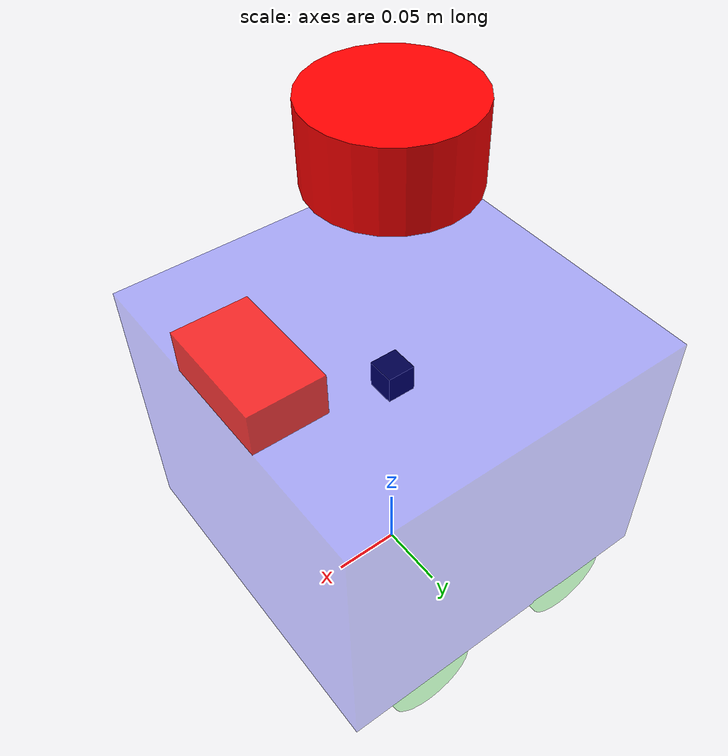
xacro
<?xml version="1.0"?>
<!-- 这个文文件的robot标签一定要有name属性，否则rviz和gazebo都不能加载机器人 -->
<robot name="first_robot" xmlns:xacro="http://www.ros.org/wiki/xacro" >
    <xacro:include filename="$(find robot_description)/urdf/common_macro.xacro" />
    <xacro:include filename="$(find robot_description)/urdf/base.xacro" />
    <xacro:include filename="$(find robot_description)/urdf/camera.xacro"/>
    <xacro:include filename="$(find robot_description)/urdf/lidar.xacro"/>
    <xacro:include filename="$(find robot_description)/urdf/gazebo_control.xacro"/>
    <xacro:include filename="$(find robot_description)/urdf/imu.xacro"/>
</robot>

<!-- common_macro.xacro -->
<robot xmlns:xacro="http://www.ros.org/wiki/xacro">
     <xacro:macro name="box_inertia" params="m x y z o_xyz o_rpy">
        <inertial>
            <mass value="${m}" />
            <origin xyz="${o_xyz}" rpy="${o_rpy}" />
            <inertia ixx="${(m/12) * (z*z + y*y)}" ixy="0" ixz="0"
                    iyy="${(m/12) * (x*x + z*z)}" iyz="0"
                    izz="${(m/12) * (x*x + y*y)}" />
        </inertial>
    </xacro:macro>

    <xacro:macro name="cylinder_inertia" params="m r l o_xyz o_rpy">
        <inertial>
            <mass value="${m}" />
            <origin xyz="${o_xyz}" rpy="${o_rpy}" />
            <inertia ixx="${(m/12) * (3*r*r + l*l)}" ixy="0" ixz="0"
                    iyy="${(m/12) * (3*r*r + l*l)}" iyz="0"
                    izz="${(m/2) * (r*r)}" />
        </inertial>
    </xacro:macro>

    <xacro:macro name="sphere_inertia" params="m r o_xyz o_rpy">
        <inertial>
            <mass value="${m}" />
            <origin xyz="${o_xyz}" rpy="${o_rpy}" />
            <inertia ixx="${(2/5) * m * r * r}" ixy="0" ixz="0"
                    iyy="${(2/5) * m * r * r}" iyz="0"
                    izz="${(2/5) * m * r * r}" />
        </inertial>
    </xacro:macro>
</robot>

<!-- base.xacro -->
<robot xmlns:xacro="http://www.ros.org/wiki/xacro" >

    <xacro:property name="base_length" value="0.25"/>
    <xacro:property name="base_width" value="0.25"/>
    <xacro:property name="base_height" value="0.20"/>
    <xacro:property name="wheel_radius" value="0.032"/>
    <xacro:property name="wheel_width" value="0.04"/>

    <!-- base-link -->
    <link name="base_footprint">
        <visual>
            <geometry>
               <sphere radius="0.0001"/>
            </geometry>
        </visual>
    </link>

    <link name="base_link">
        <visual>
            <geometry>
                <box size="${base_length} ${base_width} ${base_height}"/>
            </geometry>
            <material name="blue" >
                <color rgba="0.0 0.0 1.0 0.3"/>
            </material>
            <origin xyz="0.0 0.0 0.0" rpy="0.0 0.0 0.0"/>
        </visual>
        <collision>
                <geometry>
                    <box size="${base_length} ${base_width} ${base_height}"/>
                </geometry>
                <origin xyz="0.0 0.0 0.0" rpy="0.0 0.0 0.0"/>
        </collision>
        <xacro:box_inertia
            m="10.0"
            x="${base_length}" y="${base_width}" z="${base_height}"
            o_xyz="0.0 0.0 0.0"
            o_rpy="0.0 0.0 0.0"/>
    </link>

    <!-- wheels-macros -->
    <xacro:macro name="wheel_link" params="wheel_name">
        <link name="${wheel_name}">
            <visual>
                <geometry>
                    <cylinder radius="${wheel_radius}" length="${wheel_width}"/>
                </geometry>
                <material name="green" >
                    <color rgba="0.0 1.0 0.0 0.3"/>
                </material>
                <origin xyz="0.0 0.0 0.0" rpy="1.5708 0.0 0.0"/>
            </visual>
            <collision>
                <geometry>
                   <cylinder radius="${wheel_radius}" length="${wheel_width}"/>
                </geometry>
                <origin xyz="0.0 0.0 0.0" rpy="1.5708 0.0 0.0"/>

            </collision>
            <xacro:cylinder_inertia
                m="0.5"
                r="${wheel_radius}" l="${wheel_width}"
                o_xyz="0.0 0.0 0.0"
                o_rpy="1.5708 0.0 0.0"/>
        </link>
    </xacro:macro>

    <!-- wheel-links -->
    <xacro:wheel_link wheel_name="left_rear_wheel"/>
    <xacro:wheel_link wheel_name="right_rear_wheel"/>
    <xacro:wheel_link wheel_name="left_front_wheel"/>
    <xacro:wheel_link wheel_name="right_front_wheel"/>

    <!-- base_2_footprint_joint -->
    <joint name="base_footprint_joint" type="fixed">
        <parent link="base_footprint"/>
        <child link="base_link"/>
        <origin xyz="0.0 0.0 ${wheel_radius + (base_height)/2}" rpy="0.0 0.0 0.0"/>
    </joint>

    <!-- rear_left_wheel_joint -->
    <joint name="left_rear_wheel_joint" type="continuous">
        <parent link="base_link"/>
        <child link="left_rear_wheel"/>
        <origin xyz="${-(base_length/4)} ${(base_width - wheel_width)/2} -${base_height/2}" rpy="0.0 0.0 0.0"/>
        <axis xyz="0.0 1.0 0.0"/>
    </joint>

    <!-- rear_right_wheel_joint -->
    <joint name="right_rear_wheel_joint" type="continuous">
        <parent link="base_link"/>
        <child link="right_rear_wheel"/>
        <origin xyz="${-(base_length/4)} ${-(base_width - wheel_width)/2} -${base_height/2}" rpy="0.0 0.0 0.0"/>
        <axis xyz="0.0 1.0 0.0"/>
    </joint>

    <!-- front_left_wheel_joint -->
    <joint name="left_front_wheel_joint" type="continuous">
        <parent link="base_link"/>
        <child link="left_front_wheel"/>
        <origin xyz="${(base_length/4)} ${(base_width - wheel_width)/2} -${base_height/2}" rpy="0.0 0.0 0.0"/>
        <axis xyz="0.0 1.0 0.0"/>
    </joint>

    <!-- front_right_wheel_joint -->
    <joint name="right_front_wheel_joint" type="continuous">
        <parent link="base_link"/>
        <child link="right_front_wheel"/>
        <origin xyz="${(base_length/4)} ${-(base_width - wheel_width)/2} -${base_height/2}" rpy="0.0 0.0 0.0"/>
        <axis xyz="0.0 1.0 0.0"/>
    </joint>

</robot>

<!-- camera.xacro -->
<robot xmlns:xacro="http://www.ros.org/wiki/xacro" >

    <!-- camera_link -->
    <link name="camera_link">
        <visual>
            <geometry>
                <box size="0.05 0.08 0.03"/>
            </geometry>
            <material name="red">
                <color rgba="1.0 0.0 0.0 0.8"/>
            </material>
            <origin xyz="0.0 0.0 0.0" rpy="0.0 0.0 0.0"/>
        </visual>
        <collision>
            <geometry>
                <box size="0.05 0.08 0.03"/>
            </geometry>
            <origin xyz="0.0 0.0 0.0" rpy="0.0 0.0 0.0"/>
        </collision>
        <xacro:box_inertia
            m="1.0"
            x="0.05"
            y="0.08"
            z="0.03"
            o_xyz="0.0 0.0 0.0"
            o_rpy="0.0 0.0 0.0"/>
    </link>

    <!-- camera_base_joint -->
    <joint name="camera_base_joint" type="fixed">
        <parent link="base_link"/>
        <child link="camera_link"/>
        <origin xyz="${base_length/2 - 0.025} 0.0 ${(base_height +0.03)/2}" rpy="0.0 0.0 0.0"/>
    </joint>

</robot>

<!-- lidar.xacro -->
<robot xmlns:xacro="http://www.ros.org/wiki/xacro" >

    <xacro:property name="lidar_length" value="0.05"/>
    <xacro:property name="lidar_radius" value="0.05"/>
    <!-- Lidar_link -->
    <link name="lidar_link">
        <xacro:cylinder_inertia
            m="1.0"
            r="0.08"
            l="0.05"
            o_xyz="0.0 0.0 0.0"
            o_rpy="0.0 0.0 0.0"/>
        <visual >
            <origin xyz="0.0 0.0 0.0" rpy="0.0 0.0 0.0"/>
            <geometry>
                 <cylinder radius="${lidar_radius}" length="${lidar_length}"/>
            </geometry>
            <material name="red">
                <color rgba="1.0 0.0 0.0 1.0"/>
            </material>
        </visual>
        <collision>
            <origin xyz="0.0 0.0 0.0" rpy="0.0 0.0 0.0"/>
            <geometry>
                    <cylinder radius="${lidar_radius}" length="${lidar_length}"/>
            </geometry>
        </collision>
    </link>

    <!-- Lidar_base_joint -->
    <joint name="lidar_base_joint" type="fixed">
        <parent link="base_link"/>
        <child link="lidar_link"/>
        <origin xyz="0.0 0.0 ${(base_height/2 + lidar_length/2 + 0.1)}" rpy="0.0 0.0 0.0"/>
    </joint>

</robot>

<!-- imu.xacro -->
<robot xmlns:xacro="http://www.ros.org/wiki/xacro" >
    <!-- IMU link -->
    <link name="imu_link">
        <visual>
            <geometry>
                <box size="0.02 0.02 0.02"/>
            </geometry>
            <material name="black">
                <color rgba="0.0 0.0 0.0 1.0"/>
            </material>
        </visual>

        <xacro:box_inertia
        m="0.3"
        x="0.02"
        y="0.02"
        z="0.02"
        o_xyz="0.0 0.0 0.0"
        o_rpy="0.0 0.0 0.0"/>
    </link>

    <joint name="imu_joint" type="fixed">
        <parent link="base_link"/>
        <child link="imu_link"/>
        <origin xyz="0 0 0.05" rpy="0 0 0"/>
    </joint>
</robot>
